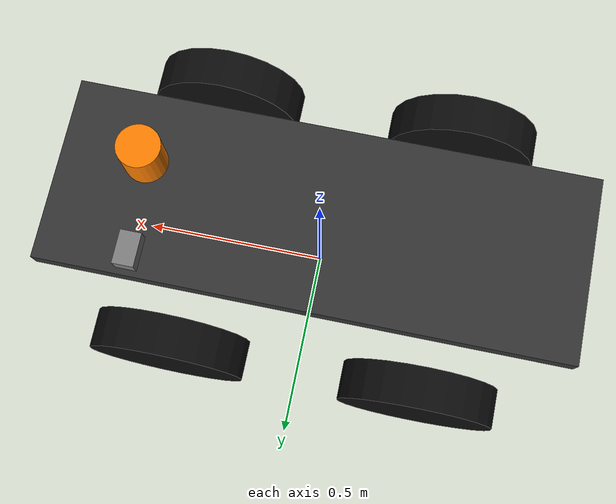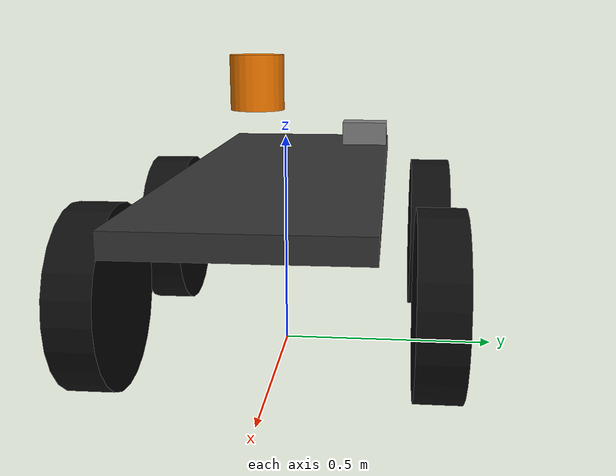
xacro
<?xml version="1.0"?>
<robot xmlns:xacro="http://ros.org/wiki/xacro" name="revo_ugv">
  <xacro:property name="PI" value="3.141592653589793"/>
  <!-- Basic geometry properties (meters) -->
  <xacro:property name="chassis_length" value="1.33"/>
  <xacro:property name="chassis_width" value="0.47"/>
  <xacro:property name="chassis_height" value="0.05"/>

  <xacro:property name="wheel_radius" value="0.2"/>
  <xacro:property name="wheel_width" value="0.1"/>
  <xacro:property name="wheel_base" value="0.65"/>
  <xacro:property name="wheel_track" value="0.705"/>
  <xacro:property name="wheel_center_z" value="-0.2"/>

  <xacro:property name="base_to_ground" value="${-(wheel_center_z - wheel_radius)}"/>
  <xacro:property name="collision_padding" value="0.1"/>
  <xacro:property name="collision_size_x" value="${chassis_length + collision_padding}"/>
  <xacro:property name="collision_size_y" value="${wheel_track + wheel_width + collision_padding}"/>
  <xacro:property name="collision_size_z" value="${base_to_ground + lidar_mount_z + collision_padding}"/>
  <xacro:property name="collision_origin_z" value="${-base_to_ground + collision_size_z * 0.5}"/>

  <!-- Camera properties (meters) -->
  <xacro:property name="camera_size_x" value="0.05"/>
  <xacro:property name="camera_size_y" value="0.08"/>
  <xacro:property name="camera_size_z" value="0.04"/>
  <xacro:property name="camera_mount_x" value="0.4"/>
  <xacro:property name="camera_mount_z" value="0.3"/>

  <!-- LiDAR properties (meters) -->
  <xacro:property name="lidar_radius" value="0.05"/>
  <xacro:property name="lidar_height" value="0.1"/>
  <xacro:property name="lidar_mount_z" value="0.6"/>

  <!-- Mass/inertia placeholders to keep robot_state_publisher happy -->
  <xacro:macro name="default_inertial" params="mass ixx iyy izz ixy iyz ixz">
    <inertial>
      <mass value="${mass}"/>
      <inertia ixx="${ixx}" ixy="${ixy}" ixz="${ixz}" iyy="${iyy}" iyz="${iyz}" izz="${izz}"/>
    </inertial>
  </xacro:macro>

  <!-- Virtual link aligned to ground (wheel contact plane) -->
  <link name="base_footprint"/>
  <joint name="base_footprint_joint" type="fixed">
    <parent link="base_footprint"/>
    <child link="base_link"/>
    <origin xyz="0 0 ${wheel_radius * 2.0}" rpy="0 0 0"/>
  </joint>

  <link name="base_link">
    <visual>
      <origin xyz="0 0 0" rpy="0 0 0"/>
      <geometry>
        <box size="${chassis_length} ${chassis_width} ${chassis_height}"/>
      </geometry>
      <material name="dark_gray">
        <color rgba="0.2 0.2 0.2 1.0"/>
      </material>
    </visual>
    <collision>
      <origin xyz="0 0 ${collision_origin_z}" rpy="0 0 0"/>
      <geometry>
        <box size="${collision_size_x} ${collision_size_y} ${collision_size_z}"/>
      </geometry>
    </collision>
    <xacro:default_inertial mass="40.0" ixx="1.0" iyy="1.0" izz="1.0" ixy="0.0" iyz="0.0" ixz="0.0"/>
  </link>

  <!-- Wheel macro -->
  <xacro:macro name="wheel" params="name x y">
    <link name="${name}">
      <visual>
        <origin xyz="0 0 0" rpy="1.5708 0 0"/>
        <geometry>
          <cylinder radius="${wheel_radius}" length="${wheel_width}"/>
        </geometry>
        <material name="black">
          <color rgba="0.05 0.05 0.05 1.0"/>
        </material>
      </visual>
      <collision>
        <origin xyz="0 0 0" rpy="1.5708 0 0"/>
        <geometry>
          <cylinder radius="${wheel_radius}" length="${wheel_width}"/>
        </geometry>
      </collision>
      <xacro:default_inertial mass="5.0" ixx="0.1" iyy="0.1" izz="0.1" ixy="0.0" iyz="0.0" ixz="0.0"/>
    </link>
    <joint name="${name}_joint" type="continuous">
      <parent link="base_link"/>
      <child link="${name}"/>
      <origin xyz="${x} ${y} ${wheel_center_z}" rpy="0 0 0"/>
      <axis xyz="0 1 0"/>
    </joint>
  </xacro:macro>

  <!-- Camera macro -->
  <xacro:macro name="camera" params="name parent *origin">
    <link name="${name}">
      <visual>
        <!-- Visual origin: center of the box (offset is handled in joint) -->
        <origin xyz="0 0 0" rpy="0 0 0"/>
        <geometry>
          <box size="${camera_size_x} ${camera_size_y} ${camera_size_z}"/>
        </geometry>
        <material name="camera_gray">
          <color rgba="0.5 0.5 0.5 1.0"/>
        </material>
      </visual>
      <xacro:default_inertial mass="0.2" ixx="0.001" iyy="0.001" izz="0.001" ixy="0.0" iyz="0.0" ixz="0.0"/>
    </link>
    <joint name="${name}_joint" type="fixed">
      <parent link="${parent}"/>
      <child link="${name}"/>
      <xacro:insert_block name="origin"/>
    </joint>
  </xacro:macro>

  <!-- LiDAR macro -->
  <xacro:macro name="lidar" params="name parent *origin">
    <link name="${name}">
      <visual>
        <!-- Visual origin at cylinder bottom, so offset z by lidar_height/2 -->
        <origin xyz="0 0 ${lidar_height / 2.0}" rpy="0 0 0"/>
        <geometry>
          <cylinder radius="${lidar_radius}" length="${lidar_height}"/>
        </geometry>
        <material name="lidar_orange">
          <color rgba="1.0 0.5 0.0 1.0"/>
        </material>
      </visual>
      <xacro:default_inertial mass="0.5" ixx="0.01" iyy="0.01" izz="0.01" ixy="0.0" iyz="0.0" ixz="0.0"/>
    </link>
    <joint name="${name}_joint" type="fixed">
      <parent link="${parent}"/>
      <child link="${name}"/>
      <xacro:insert_block name="origin"/>
    </joint>
  </xacro:macro>

  <!-- Wheel positions: wheelbase 0.65 m, track (centerline) 0.705 m -->
  <xacro:property name="wheel_offset_x" value="${wheel_base * 0.5}"/>
  <xacro:property name="wheel_offset_y" value="${wheel_track * 0.5}"/>

  <xacro:wheel name="front_left_wheel" x="${wheel_offset_x}" y="${wheel_offset_y}"/>
  <xacro:wheel name="front_right_wheel" x="${wheel_offset_x}" y="-${wheel_offset_y}"/>
  <xacro:wheel name="rear_left_wheel" x="-${wheel_offset_x}" y="${wheel_offset_y}"/>
  <xacro:wheel name="rear_right_wheel" x="-${wheel_offset_x}" y="-${wheel_offset_y}"/>

  <!-- Sensors -->
  <!-- Camera: front-left position (x=0.4, y=0.2, top at z=0.18) -->
  <!-- Box center z = 0.18 - camera_size_z/2 = 0.18 - 0.02 = 0.16 -->
  <xacro:camera name="camera" parent="base_link">
    <origin xyz="0.4 0.2 0.16" rpy="0 0 0"/>
  </xacro:camera>

  <!-- LiDAR: front-center position (x=0.4, y=0, bottom at z=0.2) -->
  <xacro:lidar name="lidar" parent="base_link">
    <origin xyz="0.4 0 0.2" rpy="0 0 0"/>
  </xacro:lidar>

  <!-- ros2_control: generic system placeholder. Replace plugin with a hardware interface that talks to Revo SDK if desired. -->
  <ros2_control name="revo_ugv_control" type="system">
    <hardware>
      <!-- 使用 fake_components/GenericSystem 以便在无硬件接口时仍可加载控制器 -->
      <plugin>fake_components/GenericSystem</plugin>
      <param name="command_interfaces">["velocity"]</param>
      <param name="state_interfaces">["position", "velocity"]</param>
    </hardware>
    <joint name="front_left_wheel_joint">
      <command_interface name="velocity"/>
      <state_interface name="position"/>
      <state_interface name="velocity"/>
    </joint>
    <joint name="front_right_wheel_joint">
      <command_interface name="velocity"/>
      <state_interface name="position"/>
      <state_interface name="velocity"/>
    </joint>
    <joint name="rear_left_wheel_joint">
      <command_interface name="velocity"/>
      <state_interface name="position"/>
      <state_interface name="velocity"/>
    </joint>
    <joint name="rear_right_wheel_joint">
      <command_interface name="velocity"/>
      <state_interface name="position"/>
      <state_interface name="velocity"/>
    </joint>
  </ros2_control>

  <!-- Transmissions to satisfy diff_drive_controller -->
  <transmission name="front_left_wheel_trans">
    <type>transmission_interface/SimpleTransmission</type>
    <joint name="front_left_wheel_joint">
      <hardwareInterface>hardware_interface/VelocityJointInterface</hardwareInterface>
    </joint>
    <actuator name="front_left_wheel_motor">
      <mechanicalReduction>1</mechanicalReduction>
    </actuator>
  </transmission>
  <transmission name="front_right_wheel_trans">
    <type>transmission_interface/SimpleTransmission</type>
    <joint name="front_right_wheel_joint">
      <hardwareInterface>hardware_interface/VelocityJointInterface</hardwareInterface>
    </joint>
    <actuator name="front_right_wheel_motor">
      <mechanicalReduction>1</mechanicalReduction>
    </actuator>
  </transmission>
  <transmission name="rear_left_wheel_trans">
    <type>transmission_interface/SimpleTransmission</type>
    <joint name="rear_left_wheel_joint">
      <hardwareInterface>hardware_interface/VelocityJointInterface</hardwareInterface>
    </joint>
    <actuator name="rear_left_wheel_motor">
      <mechanicalReduction>1</mechanicalReduction>
    </actuator>
  </transmission>
  <transmission name="rear_right_wheel_trans">
    <type>transmission_interface/SimpleTransmission</type>
    <joint name="rear_right_wheel_joint">
      <hardwareInterface>hardware_interface/VelocityJointInterface</hardwareInterface>
    </joint>
    <actuator name="rear_right_wheel_motor">
      <mechanicalReduction>1</mechanicalReduction>
    </actuator>
  </transmission>
</robot>
